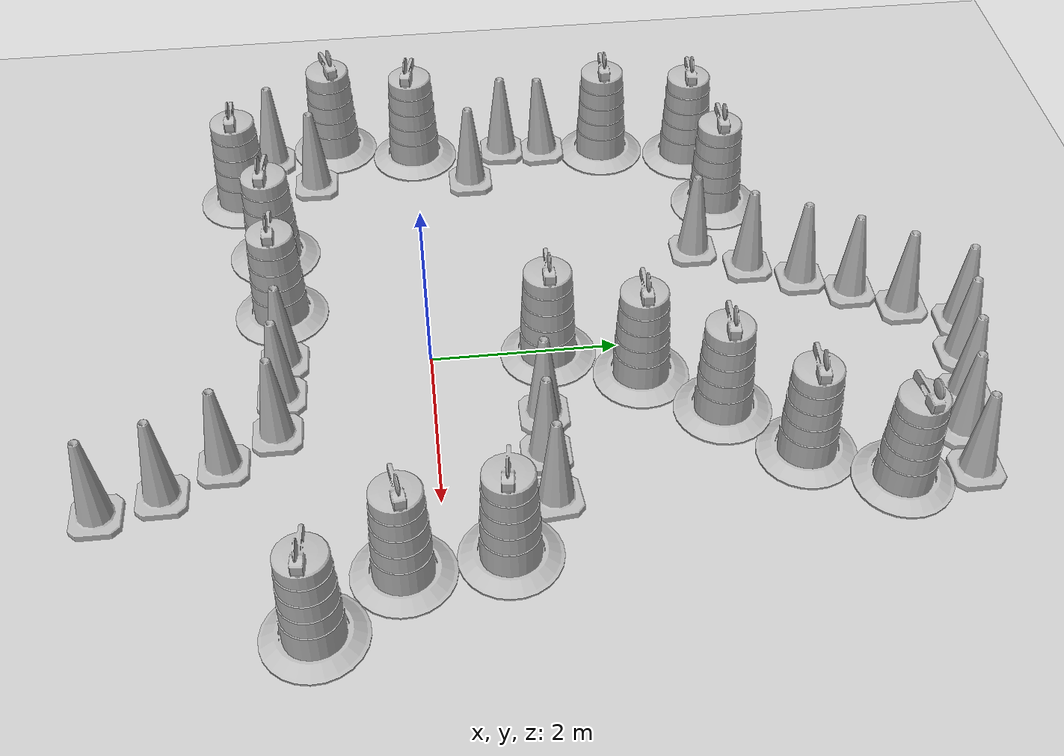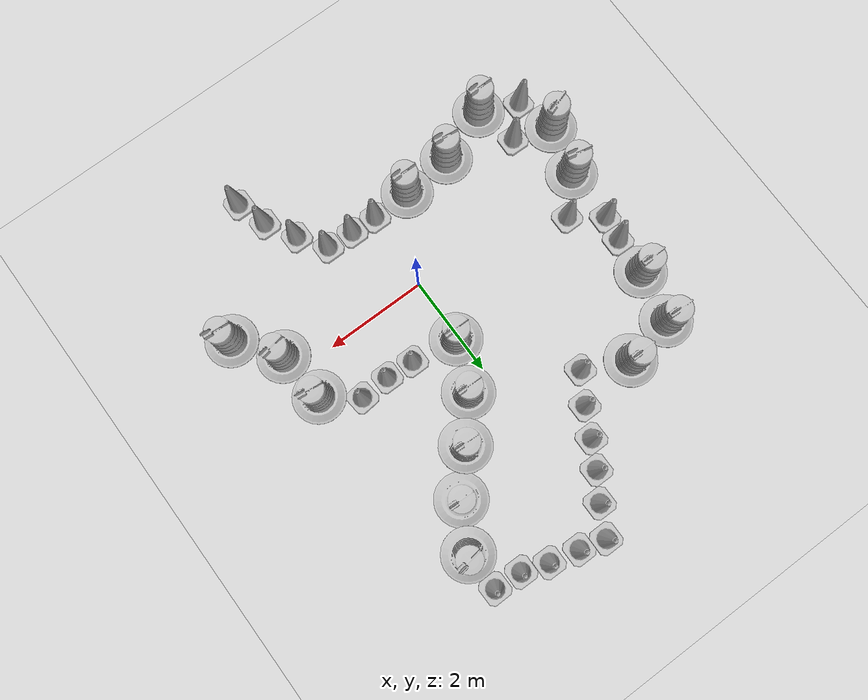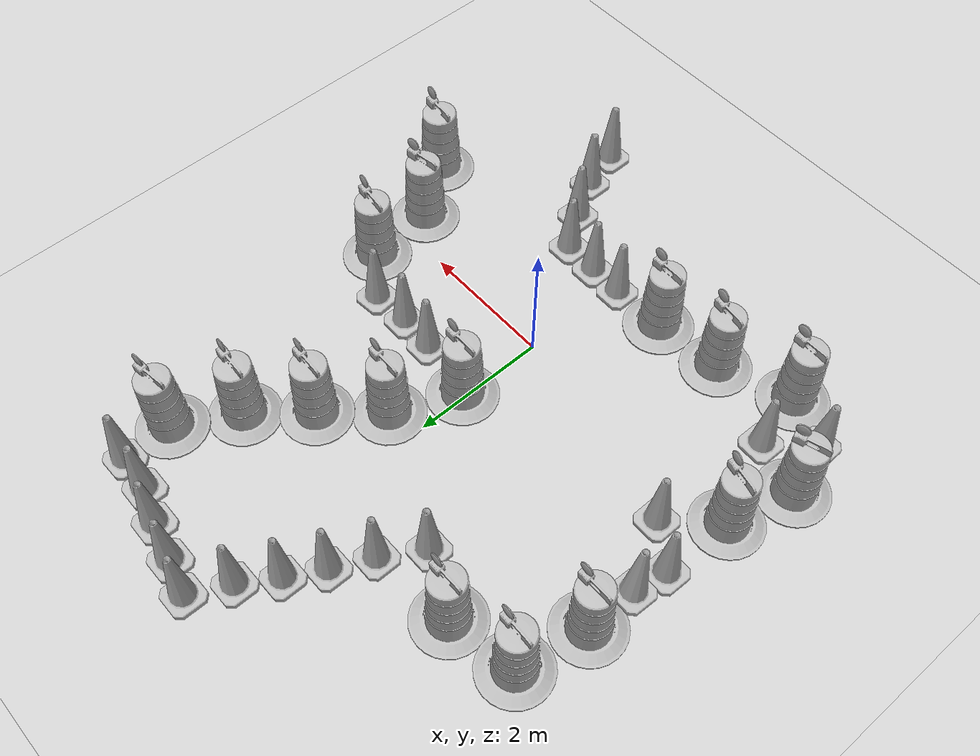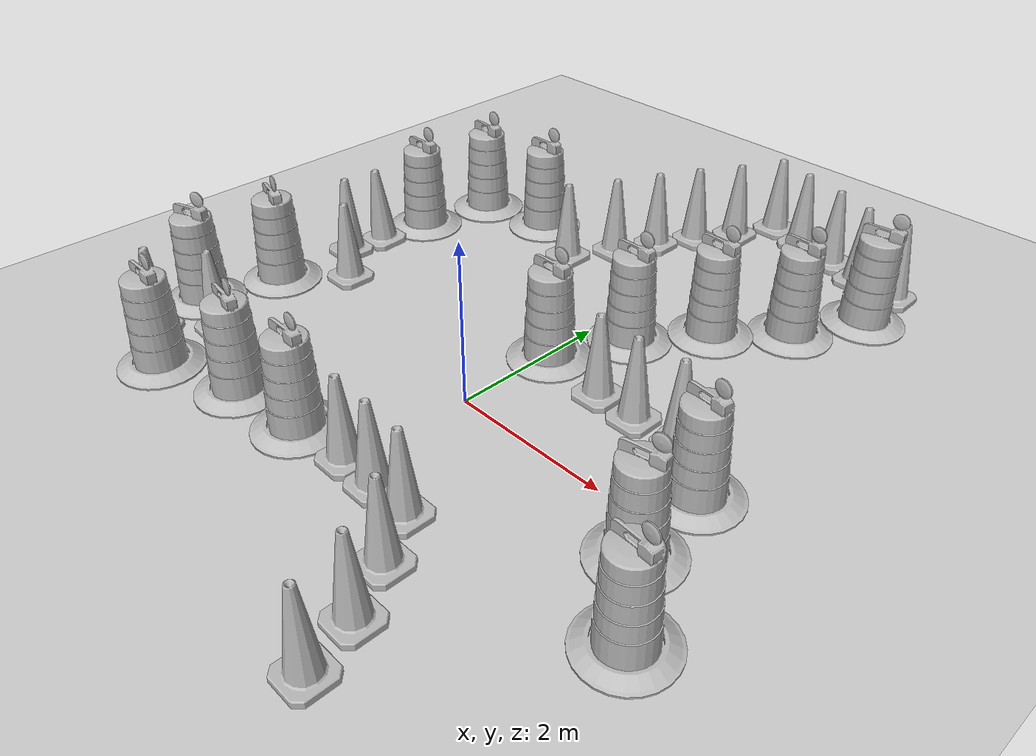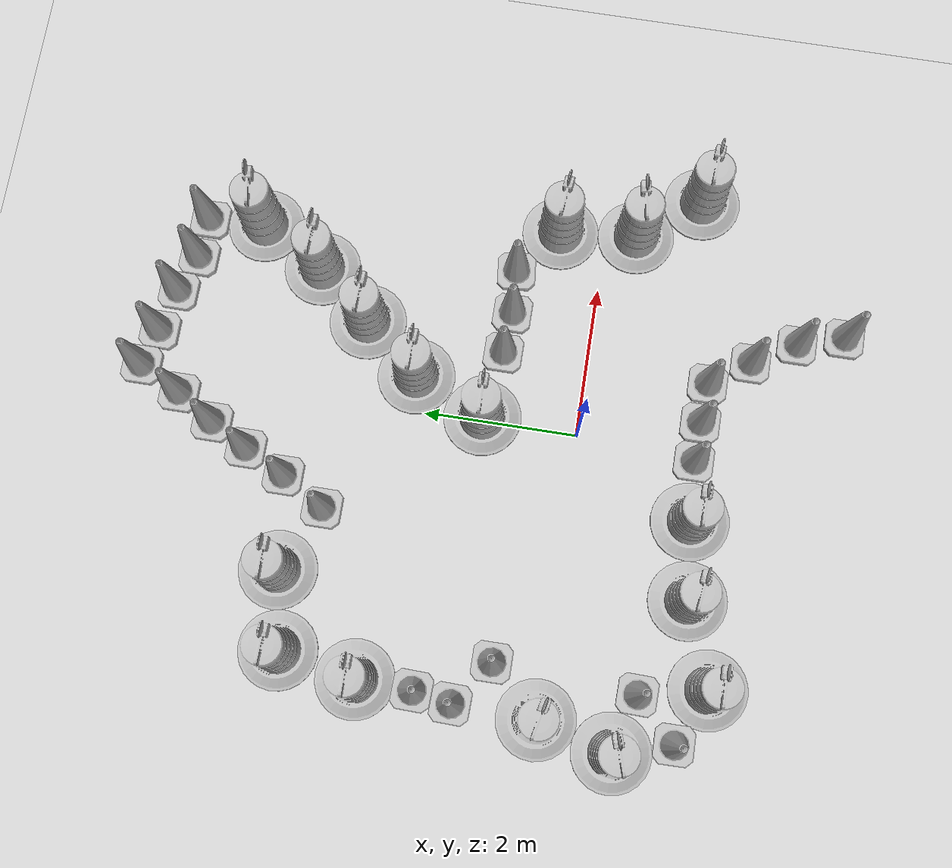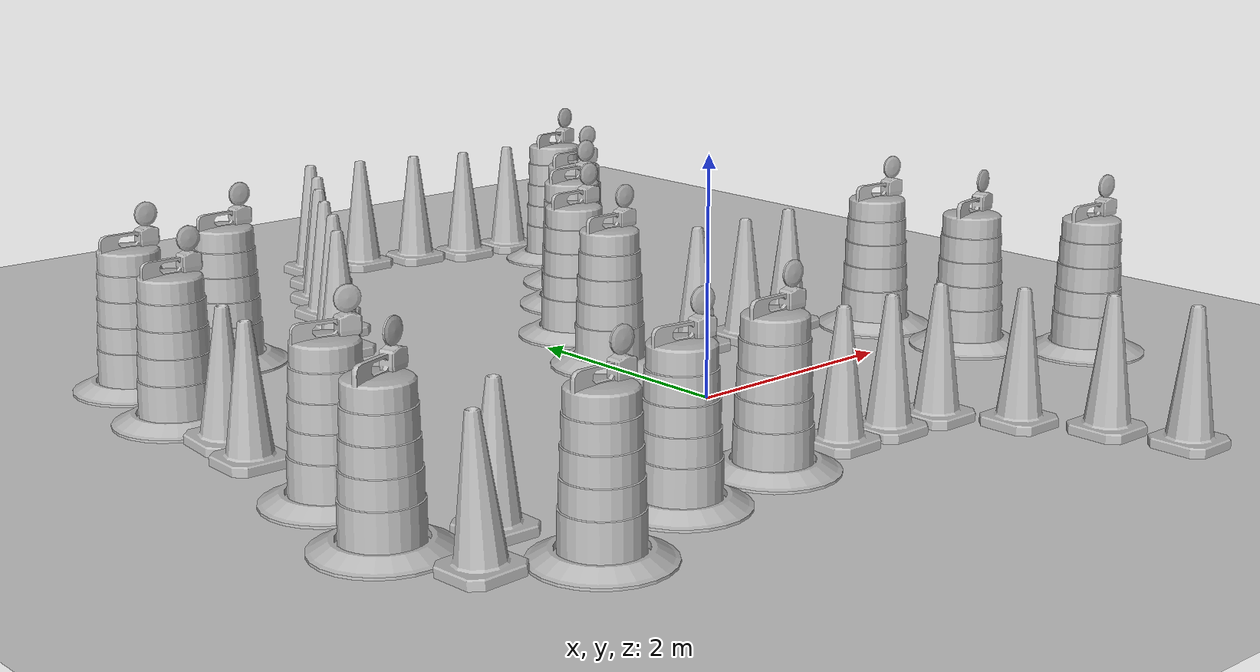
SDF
<sdf version="1.7">
 <world name="default">
  <light name="sun" type="directional">
   <pose>0 0 10 0 -0 0</pose>
   <diffuse>0.8 0.8 0.8 1</diffuse>
   <specular>0.2 0.2 0.2 1</specular>
   <attenuation>
    <range>1000</range>
    <constant>0.9</constant>
    <linear>0.01</linear>
    <quadratic>0.001</quadratic>
   </attenuation>
   <direction>-0.5 0.1 -0.9</direction>
   <spot><inner_angle>0</inner_angle><outer_angle>0</outer_angle><falloff>0</falloff></spot>
  </light>
  <model name="ground_plane">
   <static>1</static>
   <link name="link">
    <collision name="collision">
     <geometry><plane><normal>0 0 1</normal><size>100 100</size></plane></geometry>
     <surface><friction><ode><mu>100</mu><mu2>50</mu2></ode></friction></surface>
    </collision>
    <visual name="visual">
     <cast_shadows>0</cast_shadows>
     <geometry><plane><normal>0 0 1</normal><size>100 100</size></plane></geometry>
     <material>
      <script><uri>file://media/materials/scripts/gazebo.material</uri><name>Gazebo/Grey</name></script>
     </material>
    </visual>
   </link>
  </model>
  <gravity>0 0 -9.8</gravity>
  <magnetic_field>6e-06 2.3e-05 -4.2e-05</magnetic_field>
  <atmosphere type="adiabatic"/>
  <physics type="ode">
   <max_step_size>0.001</max_step_size>
   <real_time_factor>1</real_time_factor>
   <real_time_update_rate>1000</real_time_update_rate>
  </physics>
  <scene><ambient>0.4 0.4 0.4 1</ambient><background>0.7 0.7 0.7 1</background><shadows>1</shadows></scene>
  <audio><device>default</device></audio>
  <spherical_coordinates>
   <surface_model>EARTH_WGS84</surface_model>
   <latitude_deg>0</latitude_deg>
   <longitude_deg>0</longitude_deg>
   <elevation>0</elevation>
   <heading_deg>0</heading_deg>
  </spherical_coordinates>
  <model name="Construction Cone">
   <link name="link">
    <collision name="collision">
     <geometry>
      <mesh><scale>10 10 10</scale><uri>model://construction_cone/meshes/construction_cone.dae</uri></mesh>
     </geometry>
    </collision>
    <visual name="visual">
     <geometry>
      <mesh><scale>10 10 10</scale><uri>model://construction_cone/meshes/construction_cone.dae</uri></mesh>
     </geometry>
    </visual>
    <inertial>
     <inertia><ixx>1</ixx><ixy>0</ixy><ixz>0</ixz><iyy>1</iyy><iyz>0</iyz><izz>1</izz></inertia>
     <mass>1</mass>
    </inertial>
   </link>
   <pose>-3.15748 -1.22276 0 -0 -0 -0.024065</pose>
  </model>
  <model name="Construction Cone_0">
   <link name="link">
    <collision name="collision">
     <geometry>
      <mesh><scale>10 10 10</scale><uri>model://construction_cone/meshes/construction_cone.dae</uri></mesh>
     </geometry>
    </collision>
    <visual name="visual">
     <geometry>
      <mesh><scale>10 10 10</scale><uri>model://construction_cone/meshes/construction_cone.dae</uri></mesh>
     </geometry>
    </visual>
    <inertial>
     <inertia><ixx>1</ixx><ixy>0</ixy><ixz>0</ixz><iyy>1</iyy><iyz>0</iyz><izz>1</izz></inertia>
     <mass>1</mass>
    </inertial>
   </link>
   <pose>-3.04199 0.635486 -0 0 -0 0</pose>
  </model>
  <model name="Construction Cone_1">
   <link name="link">
    <collision name="collision">
     <geometry>
      <mesh><scale>10 10 10</scale><uri>model://construction_cone/meshes/construction_cone.dae</uri></mesh>
     </geometry>
    </collision>
    <visual name="visual">
     <geometry>
      <mesh><scale>10 10 10</scale><uri>model://construction_cone/meshes/construction_cone.dae</uri></mesh>
     </geometry>
    </visual>
    <inertial>
     <inertia><ixx>1</ixx><ixy>0</ixy><ixz>0</ixz><iyy>1</iyy><iyz>0</iyz><izz>1</izz></inertia>
     <mass>1</mass>
    </inertial>
   </link>
   <pose>-1.44412 3.09466 -0 0 -0 0</pose>
  </model>
  <model name="Construction Barrel">
   <link name="link">
    <inertial>
     <pose>0 0 0.4 0 -0 0</pose>
     <mass>500</mass>
     <inertia><ixx>51.2096</ixx><iyy>51.2096</iyy><izz>25</izz><ixy>0</ixy><ixz>0</ixz><iyz>0</iyz></inertia>
    </inertial>
    <collision name="collision">
     <geometry><mesh><uri>model://construction_barrel/meshes/construction_barrel.dae</uri></mesh></geometry>
    </collision>
    <visual name="visual">
     <geometry><mesh><uri>model://construction_barrel/meshes/construction_barrel.dae</uri></mesh></geometry>
    </visual>
   </link>
   <pose>-2.31317 3.5077 -0 0 -0 0.005228</pose>
  </model>
  <model name="Construction Barrel_0">
   <link name="link">
    <inertial>
     <pose>0 0 0.4 0 -0 0</pose>
     <mass>500</mass>
     <inertia><ixx>51.2096</ixx><iyy>51.2096</iyy><izz>25</izz><ixy>0</ixy><ixz>0</ixz><iyz>0</iyz></inertia>
    </inertial>
    <collision name="collision">
     <geometry><mesh><uri>model://construction_barrel/meshes/construction_barrel.dae</uri></mesh></geometry>
    </collision>
    <visual name="visual">
     <geometry><mesh><uri>model://construction_barrel/meshes/construction_barrel.dae</uri></mesh></geometry>
    </visual>
   </link>
   <pose>0.058893 1.25021 -1e-06 3e-06 -0 -4.2e-05</pose>
  </model>
  <model name="Construction Cone_2">
   <link name="link">
    <collision name="collision">
     <geometry>
      <mesh><scale>10 10 10</scale><uri>model://construction_cone/meshes/construction_cone.dae</uri></mesh>
     </geometry>
    </collision>
    <visual name="visual">
     <geometry>
      <mesh><scale>10 10 10</scale><uri>model://construction_cone/meshes/construction_cone.dae</uri></mesh>
     </geometry>
    </visual>
    <inertial>
     <inertia><ixx>1</ixx><ixy>0</ixy><ixz>0</ixz><iyy>1</iyy><iyz>0</iyz><izz>1</izz></inertia>
     <mass>1</mass>
    </inertial>
   </link>
   <pose>0.961448 1.1125 -0 -0 -0 -0</pose>
  </model>
  <model name="Construction Cone_3">
   <link name="link">
    <collision name="collision">
     <geometry>
      <mesh><scale>10 10 10</scale><uri>model://construction_cone/meshes/construction_cone.dae</uri></mesh>
     </geometry>
    </collision>
    <visual name="visual">
     <geometry>
      <mesh><scale>10 10 10</scale><uri>model://construction_cone/meshes/construction_cone.dae</uri></mesh>
     </geometry>
    </visual>
    <inertial>
     <inertia><ixx>1</ixx><ixy>0</ixy><ixz>0</ixz><iyy>1</iyy><iyz>0</iyz><izz>1</izz></inertia>
     <mass>1</mass>
    </inertial>
   </link>
   <pose>1.51552 1.07682 -0 0 -0 0</pose>
  </model>
  <model name="Construction Cone_4">
   <link name="link">
    <collision name="collision">
     <geometry>
      <mesh><scale>10 10 10</scale><uri>model://construction_cone/meshes/construction_cone.dae</uri></mesh>
     </geometry>
    </collision>
    <visual name="visual">
     <geometry>
      <mesh><scale>10 10 10</scale><uri>model://construction_cone/meshes/construction_cone.dae</uri></mesh>
     </geometry>
    </visual>
    <inertial>
     <inertia><ixx>1</ixx><ixy>0</ixy><ixz>0</ixz><iyy>1</iyy><iyz>0</iyz><izz>1</izz></inertia>
     <mass>1</mass>
    </inertial>
   </link>
   <pose>2.10065 1.11045 -0 -0 -1e-06 0.098268</pose>
  </model>
  <model name="Construction Cone_5">
   <link name="link">
    <collision name="collision">
     <geometry>
      <mesh><scale>10 10 10</scale><uri>model://construction_cone/meshes/construction_cone.dae</uri></mesh>
     </geometry>
    </collision>
    <visual name="visual">
     <geometry>
      <mesh><scale>10 10 10</scale><uri>model://construction_cone/meshes/construction_cone.dae</uri></mesh>
     </geometry>
    </visual>
    <inertial>
     <inertia><ixx>1</ixx><ixy>0</ixy><ixz>0</ixz><iyy>1</iyy><iyz>0</iyz><izz>1</izz></inertia>
     <mass>1</mass>
    </inertial>
   </link>
   <pose>-0.101891 -1.54828 -1e-05 -1e-06 0 0</pose>
  </model>
  <model name="Construction Cone_6">
   <link name="link">
    <collision name="collision">
     <geometry>
      <mesh><scale>10 10 10</scale><uri>model://construction_cone/meshes/construction_cone.dae</uri></mesh>
     </geometry>
    </collision>
    <visual name="visual">
     <geometry>
      <mesh><scale>10 10 10</scale><uri>model://construction_cone/meshes/construction_cone.dae</uri></mesh>
     </geometry>
    </visual>
    <inertial>
     <inertia><ixx>1</ixx><ixy>0</ixy><ixz>0</ixz><iyy>1</iyy><iyz>0</iyz><izz>1</izz></inertia>
     <mass>1</mass>
    </inertial>
   </link>
   <pose>0.419705 -1.56724 -0 0 -0 0</pose>
  </model>
  <model name="Construction Cone_7">
   <link name="link">
    <collision name="collision">
     <geometry>
      <mesh><scale>10 10 10</scale><uri>model://construction_cone/meshes/construction_cone.dae</uri></mesh>
     </geometry>
    </collision>
    <visual name="visual">
     <geometry>
      <mesh><scale>10 10 10</scale><uri>model://construction_cone/meshes/construction_cone.dae</uri></mesh>
     </geometry>
    </visual>
    <inertial>
     <inertia><ixx>1</ixx><ixy>0</ixy><ixz>0</ixz><iyy>1</iyy><iyz>0</iyz><izz>1</izz></inertia>
     <mass>1</mass>
    </inertial>
   </link>
   <pose>0.954803 -1.59867 -9e-06 2e-06 -0 0</pose>
  </model>
  <model name="Construction Barrel_1">
   <link name="link">
    <inertial>
     <pose>0 0 0.4 0 -0 0</pose>
     <mass>500</mass>
     <inertia><ixx>51.2096</ixx><iyy>51.2096</iyy><izz>25</izz><ixy>0</ixy><ixz>0</ixz><iyz>0</iyz></inertia>
    </inertial>
    <collision name="collision">
     <geometry><mesh><uri>model://construction_barrel/meshes/construction_barrel.dae</uri></mesh></geometry>
    </collision>
    <visual name="visual">
     <geometry><mesh><uri>model://construction_barrel/meshes/construction_barrel.dae</uri></mesh></geometry>
    </visual>
   </link>
   <pose>2.73472 0.610797 -1e-06 2e-06 -1e-06 -0.102038</pose>
  </model>
  <model name="Construction Barrel_2">
   <link name="link">
    <inertial>
     <pose>0 0 0.4 0 -0 0</pose>
     <mass>500</mass>
     <inertia><ixx>51.2096</ixx><iyy>51.2096</iyy><izz>25</izz><ixy>0</ixy><ixz>0</ixz><iyz>0</iyz></inertia>
    </inertial>
    <collision name="collision">
     <geometry><mesh><uri>model://construction_barrel/meshes/construction_barrel.dae</uri></mesh></geometry>
    </collision>
    <visual name="visual">
     <geometry><mesh><uri>model://construction_barrel/meshes/construction_barrel.dae</uri></mesh></geometry>
    </visual>
   </link>
   <pose>2.83075 -0.398013 -1e-06 3e-06 -2e-06 0.169628</pose>
  </model>
  <model name="Construction Barrel_3">
   <link name="link">
    <inertial>
     <pose>0 0 0.4 0 -0 0</pose>
     <mass>500</mass>
     <inertia><ixx>51.2096</ixx><iyy>51.2096</iyy><izz>25</izz><ixy>0</ixy><ixz>0</ixz><iyz>0</iyz></inertia>
    </inertial>
    <collision name="collision">
     <geometry><mesh><uri>model://construction_barrel/meshes/construction_barrel.dae</uri></mesh></geometry>
    </collision>
    <visual name="visual">
     <geometry><mesh><uri>model://construction_barrel/meshes/construction_barrel.dae</uri></mesh></geometry>
    </visual>
   </link>
   <pose>3.44286 -1.2162 -0 0 0 -0.073784</pose>
  </model>
  <model name="Construction Cone_8">
   <link name="link">
    <collision name="collision">
     <geometry>
      <mesh><scale>10 10 10</scale><uri>model://construction_cone/meshes/construction_cone.dae</uri></mesh>
     </geometry>
    </collision>
    <visual name="visual">
     <geometry>
      <mesh><scale>10 10 10</scale><uri>model://construction_cone/meshes/construction_cone.dae</uri></mesh>
     </geometry>
    </visual>
    <inertial>
     <inertia><ixx>1</ixx><ixy>0</ixy><ixz>0</ixz><iyy>1</iyy><iyz>0</iyz><izz>1</izz></inertia>
     <mass>1</mass>
    </inertial>
   </link>
   <pose>1.32076 -2.11984 -1e-05 -1e-06 0 0</pose>
  </model>
  <model name="Construction Cone_9">
   <link name="link">
    <collision name="collision">
     <geometry>
      <mesh><scale>10 10 10</scale><uri>model://construction_cone/meshes/construction_cone.dae</uri></mesh>
     </geometry>
    </collision>
    <visual name="visual">
     <geometry>
      <mesh><scale>10 10 10</scale><uri>model://construction_cone/meshes/construction_cone.dae</uri></mesh>
     </geometry>
    </visual>
    <inertial>
     <inertia><ixx>1</ixx><ixy>0</ixy><ixz>0</ixz><iyy>1</iyy><iyz>0</iyz><izz>1</izz></inertia>
     <mass>1</mass>
    </inertial>
   </link>
   <pose>1.66004 -2.6965 -0 0 -1e-06 0</pose>
  </model>
  <model name="Construction Barrel_4">
   <link name="link">
    <inertial>
     <pose>0 0 0.4 0 -0 0</pose>
     <mass>500</mass>
     <inertia><ixx>51.2096</ixx><iyy>51.2096</iyy><izz>25</izz><ixy>0</ixy><ixz>0</ixz><iyz>0</iyz></inertia>
    </inertial>
    <collision name="collision">
     <geometry><mesh><uri>model://construction_barrel/meshes/construction_barrel.dae</uri></mesh></geometry>
    </collision>
    <visual name="visual">
     <geometry><mesh><uri>model://construction_barrel/meshes/construction_barrel.dae</uri></mesh></geometry>
    </visual>
   </link>
   <pose>-0.886679 -1.59675 0 0 0 -0.005079</pose>
  </model>
  <model name="Construction Barrel_5">
   <link name="link">
    <inertial>
     <pose>0 0 0.4 0 -0 0</pose>
     <mass>500</mass>
     <inertia><ixx>51.2096</ixx><iyy>51.2096</iyy><izz>25</izz><ixy>0</ixy><ixz>0</ixz><iyz>0</iyz></inertia>
    </inertial>
    <collision name="collision">
     <geometry><mesh><uri>model://construction_barrel/meshes/construction_barrel.dae</uri></mesh></geometry>
    </collision>
    <visual name="visual">
     <geometry><mesh><uri>model://construction_barrel/meshes/construction_barrel.dae</uri></mesh></geometry>
    </visual>
   </link>
   <pose>-1.89872 -1.69369 -1e-06 2e-06 -2e-06 -0.122043</pose>
  </model>
  <model name="Construction Barrel_6">
   <link name="link">
    <inertial>
     <pose>0 0 0.4 0 -0 0</pose>
     <mass>500</mass>
     <inertia><ixx>51.2096</ixx><iyy>51.2096</iyy><izz>25</izz><ixy>0</ixy><ixz>0</ixz><iyz>0</iyz></inertia>
    </inertial>
    <collision name="collision">
     <geometry><mesh><uri>model://construction_barrel/meshes/construction_barrel.dae</uri></mesh></geometry>
    </collision>
    <visual name="visual">
     <geometry><mesh><uri>model://construction_barrel/meshes/construction_barrel.dae</uri></mesh></geometry>
    </visual>
   </link>
   <pose>-3.65533 -0.013928 -0 0 0 -0.218778</pose>
  </model>
  <model name="Construction Barrel_7">
   <link name="link">
    <inertial>
     <pose>0 0 0.4 0 -0 0</pose>
     <mass>500</mass>
     <inertia><ixx>51.2096</ixx><iyy>51.2096</iyy><izz>25</izz><ixy>0</ixy><ixz>0</ixz><iyz>0</iyz></inertia>
    </inertial>
    <collision name="collision">
     <geometry><mesh><uri>model://construction_barrel/meshes/construction_barrel.dae</uri></mesh></geometry>
    </collision>
    <visual name="visual">
     <geometry><mesh><uri>model://construction_barrel/meshes/construction_barrel.dae</uri></mesh></geometry>
    </visual>
   </link>
   <pose>-2.96655 -2.08317 -1e-05 0 -0 0.005608</pose>
  </model>
  <model name="Construction Cone_10">
   <link name="link">
    <collision name="collision">
     <geometry>
      <mesh><scale>10 10 10</scale><uri>model://construction_cone/meshes/construction_cone.dae</uri></mesh>
     </geometry>
    </collision>
    <visual name="visual">
     <geometry>
      <mesh><scale>10 10 10</scale><uri>model://construction_cone/meshes/construction_cone.dae</uri></mesh>
     </geometry>
    </visual>
    <inertial>
     <inertia><ixx>1</ixx><ixy>0</ixy><ixz>0</ixz><iyy>1</iyy><iyz>0</iyz><izz>1</izz></inertia>
     <mass>1</mass>
    </inertial>
   </link>
   <pose>-3.62671 1.0651 1e-06 1e-06 -2e-06 -0.027295</pose>
  </model>
  <model name="Construction Barrel_8">
   <link name="link">
    <inertial>
     <pose>0 0 0.4 0 -0 0</pose>
     <mass>500</mass>
     <inertia><ixx>51.2096</ixx><iyy>51.2096</iyy><izz>25</izz><ixy>0</ixy><ixz>0</ixz><iyz>0</iyz></inertia>
    </inertial>
    <collision name="collision">
     <geometry><mesh><uri>model://construction_barrel/meshes/construction_barrel.dae</uri></mesh></geometry>
    </collision>
    <visual name="visual">
     <geometry><mesh><uri>model://construction_barrel/meshes/construction_barrel.dae</uri></mesh></geometry>
    </visual>
   </link>
   <pose>-3.31032 3.31902 -2e-06 1e-06 8e-06 -0.033882</pose>
  </model>
  <model name="Construction Barrel_9">
   <link name="link">
    <inertial>
     <pose>0 0 0.4 0 -0 0</pose>
     <mass>500</mass>
     <inertia><ixx>51.2096</ixx><iyy>51.2096</iyy><izz>25</izz><ixy>0</ixy><ixz>0</ixz><iyz>0</iyz></inertia>
    </inertial>
    <collision name="collision">
     <geometry><mesh><uri>model://construction_barrel/meshes/construction_barrel.dae</uri></mesh></geometry>
    </collision>
    <visual name="visual">
     <geometry><mesh><uri>model://construction_barrel/meshes/construction_barrel.dae</uri></mesh></geometry>
    </visual>
   </link>
   <pose>-3.51519 2.29771 -0.000128 2e-06 -0 0.000114</pose>
  </model>
  <model name="Construction Cone_11">
   <link name="link">
    <collision name="collision">
     <geometry>
      <mesh><scale>10 10 10</scale><uri>model://construction_cone/meshes/construction_cone.dae</uri></mesh>
     </geometry>
    </collision>
    <visual name="visual">
     <geometry>
      <mesh><scale>10 10 10</scale><uri>model://construction_cone/meshes/construction_cone.dae</uri></mesh>
     </geometry>
    </visual>
    <inertial>
     <inertia><ixx>1</ixx><ixy>0</ixy><ixz>0</ixz><iyy>1</iyy><iyz>0</iyz><izz>1</izz></inertia>
     <mass>1</mass>
    </inertial>
   </link>
   <pose>-3.54299 1.5694 0.01496 0.059488 5.8e-05 -0.027304</pose>
  </model>
  <model name="Construction Barrel_10">
   <link name="link">
    <inertial>
     <pose>0 0 0.4 0 -0 0</pose>
     <mass>500</mass>
     <inertia><ixx>51.2096</ixx><iyy>51.2096</iyy><izz>25</izz><ixy>0</ixy><ixz>0</ixz><iyz>0</iyz></inertia>
    </inertial>
    <collision name="collision">
     <geometry><mesh><uri>model://construction_barrel/meshes/construction_barrel.dae</uri></mesh></geometry>
    </collision>
    <visual name="visual">
     <geometry><mesh><uri>model://construction_barrel/meshes/construction_barrel.dae</uri></mesh></geometry>
    </visual>
   </link>
   <pose>0.473753 2.19199 -2e-06 -4e-06 4e-06 -0.012454</pose>
  </model>
  <model name="Construction Cone_12">
   <link name="link">
    <collision name="collision">
     <geometry>
      <mesh><scale>10 10 10</scale><uri>model://construction_cone/meshes/construction_cone.dae</uri></mesh>
     </geometry>
    </collision>
    <visual name="visual">
     <geometry>
      <mesh><scale>10 10 10</scale><uri>model://construction_cone/meshes/construction_cone.dae</uri></mesh>
     </geometry>
    </visual>
    <inertial>
     <inertia><ixx>1</ixx><ixy>0</ixy><ixz>0</ixz><iyy>1</iyy><iyz>0</iyz><izz>1</izz></inertia>
     <mass>1</mass>
    </inertial>
   </link>
   <pose>-1.10028 3.66602 0 -0 -0 -0</pose>
  </model>
  <model name="Construction Cone_13">
   <link name="link">
    <collision name="collision">
     <geometry>
      <mesh><scale>10 10 10</scale><uri>model://construction_cone/meshes/construction_cone.dae</uri></mesh>
     </geometry>
    </collision>
    <visual name="visual">
     <geometry>
      <mesh><scale>10 10 10</scale><uri>model://construction_cone/meshes/construction_cone.dae</uri></mesh>
     </geometry>
    </visual>
    <inertial>
     <inertia><ixx>1</ixx><ixy>0</ixy><ixz>0</ixz><iyy>1</iyy><iyz>0</iyz><izz>1</izz></inertia>
     <mass>1</mass>
    </inertial>
   </link>
   <pose>-0.825628 4.21237 -0 0 -0 0.000196</pose>
  </model>
  <model name="Construction Cone_14">
   <link name="link">
    <collision name="collision">
     <geometry>
      <mesh><scale>10 10 10</scale><uri>model://construction_cone/meshes/construction_cone.dae</uri></mesh>
     </geometry>
    </collision>
    <visual name="visual">
     <geometry>
      <mesh><scale>10 10 10</scale><uri>model://construction_cone/meshes/construction_cone.dae</uri></mesh>
     </geometry>
    </visual>
    <inertial>
     <inertia><ixx>1</ixx><ixy>0</ixy><ixz>0</ixz><iyy>1</iyy><iyz>0</iyz><izz>1</izz></inertia>
     <mass>1</mass>
    </inertial>
   </link>
   <pose>-0.548314 4.71541 -0 0 -0 0.000551</pose>
  </model>
  <model name="Construction Cone_15">
   <link name="link">
    <collision name="collision">
     <geometry>
      <mesh><scale>10 10 10</scale><uri>model://construction_cone/meshes/construction_cone.dae</uri></mesh>
     </geometry>
    </collision>
    <visual name="visual">
     <geometry>
      <mesh><scale>10 10 10</scale><uri>model://construction_cone/meshes/construction_cone.dae</uri></mesh>
     </geometry>
    </visual>
    <inertial>
     <inertia><ixx>1</ixx><ixy>0</ixy><ixz>0</ixz><iyy>1</iyy><iyz>0</iyz><izz>1</izz></inertia>
     <mass>1</mass>
    </inertial>
   </link>
   <pose>-0.225918 5.21853 -0 0 -0 0.000675</pose>
  </model>
  <model name="Construction Cone_16">
   <link name="link">
    <collision name="collision">
     <geometry>
      <mesh><scale>10 10 10</scale><uri>model://construction_cone/meshes/construction_cone.dae</uri></mesh>
     </geometry>
    </collision>
    <visual name="visual">
     <geometry>
      <mesh><scale>10 10 10</scale><uri>model://construction_cone/meshes/construction_cone.dae</uri></mesh>
     </geometry>
    </visual>
    <inertial>
     <inertia><ixx>1</ixx><ixy>0</ixy><ixz>0</ixz><iyy>1</iyy><iyz>0</iyz><izz>1</izz></inertia>
     <mass>1</mass>
    </inertial>
   </link>
   <pose>0.066705 5.7798 -0 0 -1e-06 0</pose>
  </model>
  <model name="Construction Cone_17">
   <link name="link">
    <collision name="collision">
     <geometry>
      <mesh><scale>10 10 10</scale><uri>model://construction_cone/meshes/construction_cone.dae</uri></mesh>
     </geometry>
    </collision>
    <visual name="visual">
     <geometry>
      <mesh><scale>10 10 10</scale><uri>model://construction_cone/meshes/construction_cone.dae</uri></mesh>
     </geometry>
    </visual>
    <inertial>
     <inertia><ixx>1</ixx><ixy>0</ixy><ixz>0</ixz><iyy>1</iyy><iyz>0</iyz><izz>1</izz></inertia>
     <mass>1</mass>
    </inertial>
   </link>
   <pose>1.84409 -3.30633 -0 0 -0 0</pose>
  </model>
  <model name="Construction Barrel_11">
   <link name="link">
    <inertial>
     <pose>0 0 0.4 0 -0 0</pose>
     <mass>500</mass>
     <inertia><ixx>51.2096</ixx><iyy>51.2096</iyy><izz>25</izz><ixy>0</ixy><ixz>0</ixz><iyz>0</iyz></inertia>
    </inertial>
    <collision name="collision">
     <geometry><mesh><uri>model://construction_barrel/meshes/construction_barrel.dae</uri></mesh></geometry>
    </collision>
    <visual name="visual">
     <geometry><mesh><uri>model://construction_barrel/meshes/construction_barrel.dae</uri></mesh></geometry>
    </visual>
   </link>
   <pose>-3.91273 -0.996178 -1e-05 0 -0 0.310412</pose>
  </model>
  <model name="Construction Cone_18">
   <link name="link">
    <collision name="collision">
     <geometry>
      <mesh><scale>10 10 10</scale><uri>model://construction_cone/meshes/construction_cone.dae</uri></mesh>
     </geometry>
    </collision>
    <visual name="visual">
     <geometry>
      <mesh><scale>10 10 10</scale><uri>model://construction_cone/meshes/construction_cone.dae</uri></mesh>
     </geometry>
    </visual>
    <inertial>
     <inertia><ixx>1</ixx><ixy>0</ixy><ixz>0</ixz><iyy>1</iyy><iyz>0</iyz><izz>1</izz></inertia>
     <mass>1</mass>
    </inertial>
   </link>
   <pose>-3.69178 -1.75097 0.011141 -0.02462 -0.027577 0.014074</pose>
  </model>
  <model name="Construction Barrel_12">
   <link name="link">
    <inertial>
     <pose>0 0 0.4 0 -0 0</pose>
     <mass>500</mass>
     <inertia><ixx>51.2096</ixx><iyy>51.2096</iyy><izz>25</izz><ixy>0</ixy><ixz>0</ixz><iyz>0</iyz></inertia>
    </inertial>
    <collision name="collision">
     <geometry><mesh><uri>model://construction_barrel/meshes/construction_barrel.dae</uri></mesh></geometry>
    </collision>
    <visual name="visual">
     <geometry><mesh><uri>model://construction_barrel/meshes/construction_barrel.dae</uri></mesh></geometry>
    </visual>
   </link>
   <pose>1.10186 2.94366 0.031694 -0.002821 -0.008375 -0.039372</pose>
  </model>
  <model name="Construction Barrel_13">
   <link name="link">
    <inertial>
     <pose>0 0 0.4 0 -0 0</pose>
     <mass>500</mass>
     <inertia><ixx>51.2096</ixx><iyy>51.2096</iyy><izz>25</izz><ixy>0</ixy><ixz>0</ixz><iyz>0</iyz></inertia>
    </inertial>
    <collision name="collision">
     <geometry><mesh><uri>model://construction_barrel/meshes/construction_barrel.dae</uri></mesh></geometry>
    </collision>
    <visual name="visual">
     <geometry><mesh><uri>model://construction_barrel/meshes/construction_barrel.dae</uri></mesh></geometry>
    </visual>
   </link>
   <pose>1.74461 3.6759 -0.00011 -0.000312 0.000175 -0.039859</pose>
  </model>
  <model name="Construction Barrel_14">
   <link name="link">
    <inertial>
     <pose>0 0 0.4 0 -0 0</pose>
     <mass>500</mass>
     <inertia><ixx>51.2096</ixx><iyy>51.2096</iyy><izz>25</izz><ixy>0</ixy><ixz>0</ixz><iyz>0</iyz></inertia>
    </inertial>
    <collision name="collision">
     <geometry><mesh><uri>model://construction_barrel/meshes/construction_barrel.dae</uri></mesh></geometry>
    </collision>
    <visual name="visual">
     <geometry><mesh><uri>model://construction_barrel/meshes/construction_barrel.dae</uri></mesh></geometry>
    </visual>
   </link>
   <pose>2.22082 4.52823 0.016527 -0.025938 0.019907 0.144726</pose>
  </model>
  <model name="Construction Cone_19">
   <link name="link">
    <collision name="collision">
     <geometry>
      <mesh><scale>10 10 10</scale><uri>model://construction_cone/meshes/construction_cone.dae</uri></mesh>
     </geometry>
    </collision>
    <visual name="visual">
     <geometry>
      <mesh><scale>10 10 10</scale><uri>model://construction_cone/meshes/construction_cone.dae</uri></mesh>
     </geometry>
    </visual>
    <inertial>
     <inertia><ixx>1</ixx><ixy>0</ixy><ixz>0</ixz><iyy>1</iyy><iyz>0</iyz><izz>1</izz></inertia>
     <mass>1</mass>
    </inertial>
   </link>
   <pose>0.570711 5.64246 -0 -0 -0 -0</pose>
  </model>
  <model name="Construction Cone_20">
   <link name="link">
    <collision name="collision">
     <geometry>
      <mesh><scale>10 10 10</scale><uri>model://construction_cone/meshes/construction_cone.dae</uri></mesh>
     </geometry>
    </collision>
    <visual name="visual">
     <geometry>
      <mesh><scale>10 10 10</scale><uri>model://construction_cone/meshes/construction_cone.dae</uri></mesh>
     </geometry>
    </visual>
    <inertial>
     <inertia><ixx>1</ixx><ixy>0</ixy><ixz>0</ixz><iyy>1</iyy><iyz>0</iyz><izz>1</izz></inertia>
     <mass>1</mass>
    </inertial>
   </link>
   <pose>1.13928 5.50506 -0 0 -1e-06 -0.012457</pose>
  </model>
  <model name="Construction Cone_21">
   <link name="link">
    <collision name="collision">
     <geometry>
      <mesh><scale>10 10 10</scale><uri>model://construction_cone/meshes/construction_cone.dae</uri></mesh>
     </geometry>
    </collision>
    <visual name="visual">
     <geometry>
      <mesh><scale>10 10 10</scale><uri>model://construction_cone/meshes/construction_cone.dae</uri></mesh>
     </geometry>
    </visual>
    <inertial>
     <inertia><ixx>1</ixx><ixy>0</ixy><ixz>0</ixz><iyy>1</iyy><iyz>0</iyz><izz>1</izz></inertia>
     <mass>1</mass>
    </inertial>
   </link>
   <pose>1.6461 5.33026 -0 1e-06 -0 -0.01169</pose>
  </model>
  <model name="Construction Cone_22">
   <link name="link">
    <collision name="collision">
     <geometry>
      <mesh><scale>10 10 10</scale><uri>model://construction_cone/meshes/construction_cone.dae</uri></mesh>
     </geometry>
    </collision>
    <visual name="visual">
     <geometry>
      <mesh><scale>10 10 10</scale><uri>model://construction_cone/meshes/construction_cone.dae</uri></mesh>
     </geometry>
    </visual>
    <inertial>
     <inertia><ixx>1</ixx><ixy>0</ixy><ixz>0</ixz><iyy>1</iyy><iyz>0</iyz><izz>1</izz></inertia>
     <mass>1</mass>
    </inertial>
   </link>
   <pose>2.19204 5.2858 -0 0 -0 0.013028</pose>
  </model>
 </world>
</sdf>
